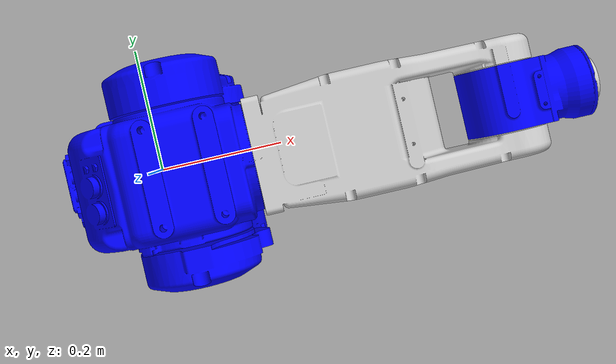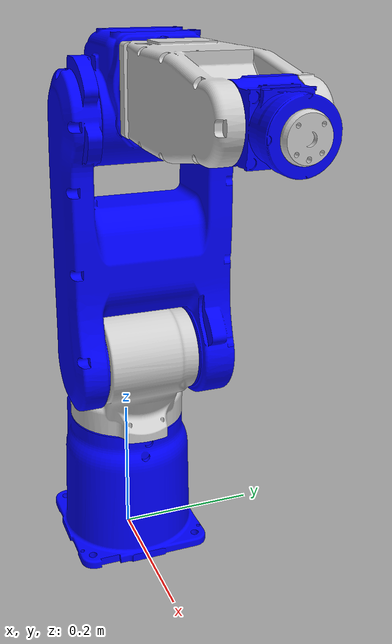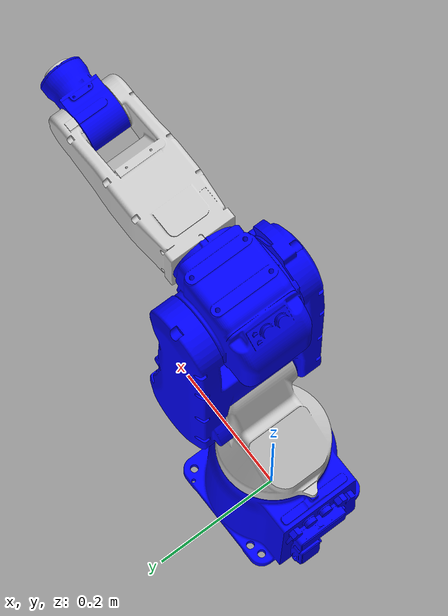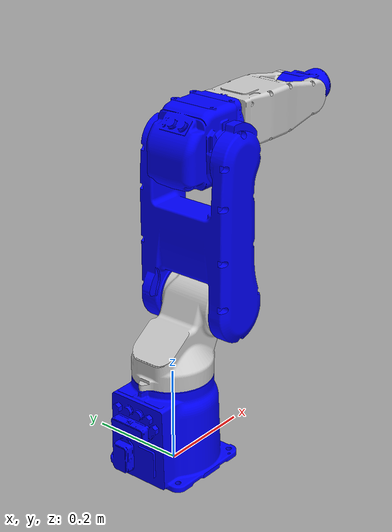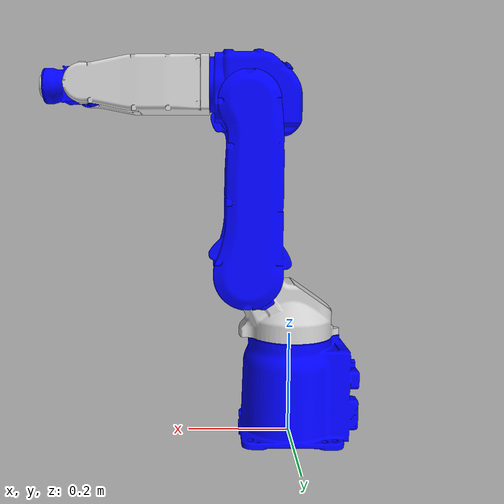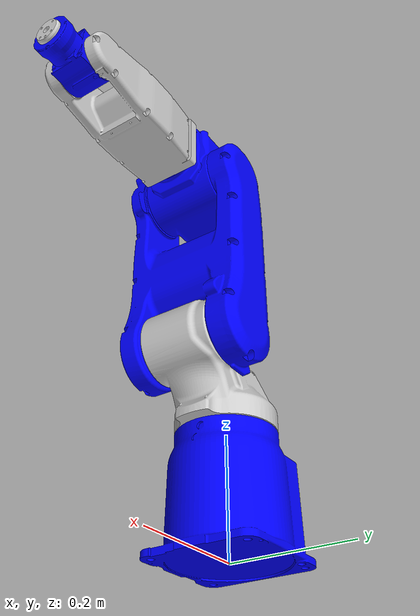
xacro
<?xml version="1.0" ?>

<robot name="bot_mh5" xmlns:xacro="http://ros.org/wiki/xacro">
	<xacro:include filename="$(find motoman_mh5_support)/urdf/mh5_macro.xacro" />
	<xacro:motoman_mh5 prefix=""/>

	<!-- .......... GAZEBO SUPPORT .............. -->
	<xacro:include filename="$(find motoman_mh5_support)/urdf/mh5.gazebo">
		<arg name="prefix" value="${prefix}" />
	</xacro:include>

</robot>

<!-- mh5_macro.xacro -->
<robot xmlns:xacro="http://ros.org/wiki/xacro">
	<xacro:macro name="motoman_mh5" params="prefix">

		<!-- link list -->
		<link name="world"/>  		<!-- ADDED NEW: World Link. Required for robot to be rigidly attached to world.-->

		<link name="${prefix}base_link">
			<visual>
			        <origin rpy="0 0 3.14159"/>
				<geometry>
					<mesh filename="package://motoman_mh5_support/meshes/mh5/visual/MH5_BASE_AXIS.stl" />
				</geometry>
				<material name="blue">
					<color rgba="0 0 1 1"/>
				</material>

			</visual>
			<collision>
			        <origin rpy="0 0 3.14159"/>
				<geometry>
					<mesh filename="package://motoman_mh5_support/meshes/mh5/collision/MH5_BASE_AXIS.stl" />
				</geometry>
				<material name="yellow">
					<color rgba="0 1 1 1"/>
				</material>
			</collision>
			<inertial>
	      <origin xyz="0 0 0.1" rpy="0 0 0"/>
	      <mass value="1"/>
	      <inertia
	        ixx="0.0077" ixy="0.0" ixz="0.0"
	        iyy="0.0066" iyz="0.0"
	        izz="0.0077"/>
	    </inertial>
		</link>

		<link name="${prefix}link_s">
			<visual>
				<geometry>
					<mesh filename="package://motoman_mh5_support/meshes/mh5/visual/MH5_S_AXIS.stl"/>
				</geometry>
				<material name="silver">
					<color rgba="0.8 0.8 0.8 1"/>
				</material>
			</visual>
			<collision>
				<geometry>
					<mesh filename="package://motoman_mh5_support/meshes/mh5/collision/MH5_S_AXIS.stl" />
				</geometry>
				<material name="yellow"/>
			</collision>
			<inertial>
	      <origin xyz="0 0 0.05" rpy="0 0 0"/>
	      <mass value="1"/>
	      <inertia
	        ixx="0.0052" ixy="0.0" ixz="0.0"
	        iyy="0.0052" iyz="0.0"
	        izz="0.0066"/>
	    </inertial>
		</link>
		<link name="${prefix}link_l">
			<visual>
				<geometry>
					<mesh filename="package://motoman_mh5_support/meshes/mh5/visual/MH5_L_AXIS.stl"/>
				</geometry>
				<material name="blue"/>
			</visual>
			<collision>
				<geometry>
					<mesh filename="package://motoman_mh5_support/meshes/mh5/collision/MH5_L_AXIS.stl" />
				</geometry>
				<material name="yellow"/>
			</collision>
			<inertial>
	      <origin xyz="0 0 0.13" rpy="0 0 0"/>
	      <mass value="1"/>
	      <inertia
	        ixx="0.02055" ixy="0.0" ixz="0.0"
	        iyy="0.01875" iyz="0.0"
	        izz="0.00555"/>
	    </inertial>
		</link>

		<link name="${prefix}link_u">
			<visual>
				<geometry>
					<mesh filename="package://motoman_mh5_support/meshes/mh5/visual/MH5_U_AXIS.stl"/>
				</geometry>
				<material name="blue"/>
			</visual>
			<collision>
				<geometry>
					<mesh filename="package://motoman_mh5_support/meshes/mh5/collision/MH5_U_AXIS.stl" />
				</geometry>
				<material name="yellow"/>
			</collision>
			<inertial>
	      <origin xyz="0 0 0.05" rpy="0 0 0"/>
	      <mass value="1"/>
	      <inertia
	        ixx="0.00328" ixy="0.0" ixz="0.0"
	        iyy="0.00354" iyz="0.0"
	        izz="0.00401"/>
	    </inertial>
		</link>

		<link name="${prefix}link_r">
			<visual>
				<geometry>
					<mesh filename="package://motoman_mh5_support/meshes/mh5/visual/MH5_R_AXIS.stl"/>
				</geometry>
				<material name="silver"/>
			</visual>
			<collision>
				<geometry>
					<mesh filename="package://motoman_mh5_support/meshes/mh5/collision/MH5_R_AXIS.stl" />
				</geometry>
				<material name="yellow"/>
			</collision>
			<inertial>
	      <origin xyz="0.1 0 0" rpy="0 0 0"/>
	      <mass value="1"/>
	      <inertia
	        ixx="0.00184" ixy="0.0" ixz="0.0"
	        iyy="0.00708" iyz="0.0"
	        izz="0.00691"/>
	    </inertial>
		</link>

		<link name="${prefix}link_b">
			<visual>
				<geometry>
					<mesh filename="package://motoman_mh5_support/meshes/mh5/visual/MH5_B_AXIS.stl"/>
				</geometry>
				<material name="blue"/>
			</visual>
			<collision>
				<geometry>
					<mesh filename="package://motoman_mh5_support/meshes/mh5/collision/MH5_B_AXIS.stl" />
				</geometry>
				<material name="yellow"/>
			</collision>
			<inertial>
	      <origin xyz="0.05 0 0" rpy="0 0 0"/>
	      <mass value="1"/>
	      <inertia
	        ixx="0.000708" ixy="0.0" ixz="0.0"
	        iyy="0.001308" iyz="0.0"
	        izz="0.004167"/>
	    </inertial>
		</link>

		<link name="${prefix}link_t">
			<visual>
				<geometry>
					<mesh filename="package://motoman_mh5_support/meshes/mh5/visual/MH5_T_AXIS.stl" />
				</geometry>
				<material name="silver"/>
			</visual>
			<collision>
				<geometry>
					<mesh filename="package://motoman_mh5_support/meshes/mh5/collision/MH5_T_AXIS.stl" />
				</geometry>
				<material name="yellow"/>
			</collision>
			<inertial>
	      <origin xyz="0 0 0" rpy="0 0 0"/>
	      <mass value="1"/>
	      <inertia
	        ixx="0.00041667" ixy="0.0" ixz="0.0"
	        iyy="0.00028333" iyz="0.0"
	        izz="0.00028333"/>
	    </inertial>
		</link>
		<!-- end of link list -->

		<!-- joint list -->
		<joint name="fixed" type="fixed">  <!-- ADDED BY ADAM:: Start -->
			<parent link="world"/>
			<child link="${prefix}base_link"/>
		</joint>               		         <!-- ADDED BY ADAM:: END -->

		<joint name="${prefix}joint_s" type="revolute">
			<parent link="${prefix}base_link"/>
			<child link="${prefix}link_s"/>
			<origin xyz="0 0 0.1990" rpy="0 0 0"/>
			<axis xyz="0 0 1" />
			<limit lower="-2.9671" upper="2.9671" effort="100" velocity="2.96" />
		</joint>
		<joint name="${prefix}joint_l" type="revolute">
			<parent link="${prefix}link_s"/>
			<child link="${prefix}link_l"/>
			<origin xyz="0.0880 0 0.1310" rpy="0 0 0"/>
			<axis xyz="0 1 0" />
			<limit lower="-1.1345" upper="2.6180" effort="100" velocity="2.96" />
		</joint>
		<joint name="${prefix}joint_u" type="revolute">
			<parent link="${prefix}link_l"/>
			<child link="${prefix}link_u"/>
			<origin xyz="0 0 0.3100" rpy="0 0 0"/>
			<axis xyz="0 -1 0" />
			<limit lower="-1.0122" upper="3.2218" effort="100" velocity="2.96" />
		</joint>
		<joint name="${prefix}joint_r" type="revolute">
			<parent link="${prefix}link_u"/>
			<child link="${prefix}link_r"/>
			<origin xyz="0.0715 0 0.0399" rpy="0 0 0"/>
			<axis xyz="-1 0 0" />
			<limit lower="-3.3161" upper="3.3161" effort="100" velocity="3.48" />
		</joint>
		<joint name="${prefix}joint_b" type="revolute">
			<parent link="${prefix}link_r"/>
			<child link="${prefix}link_b"/>
			<origin xyz="0.2335 0 0" rpy="0 0 0"/>
			<axis xyz="0 -1 0" />
			<limit lower="-2.1817" upper="2.1817" effort="100" velocity="3.48" />
		</joint>
		<joint name="${prefix}joint_t" type="revolute">
			<parent link="${prefix}link_b"/>
			<child link="${prefix}link_t"/>
			<origin xyz="0.0865 0 0" rpy="0 0 0"/>
			<axis xyz="-1 0 0" />
			<limit lower="-6.2831" upper="6.2831" effort="100" velocity="6.97" />
		</joint>
		<!-- end of joint list -->
	</xacro:macro>

</robot>
